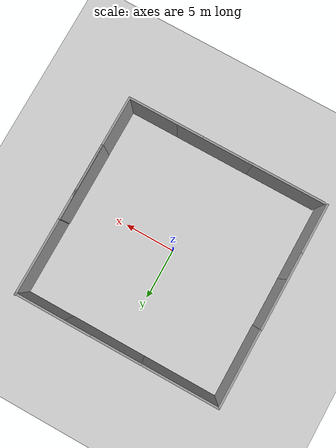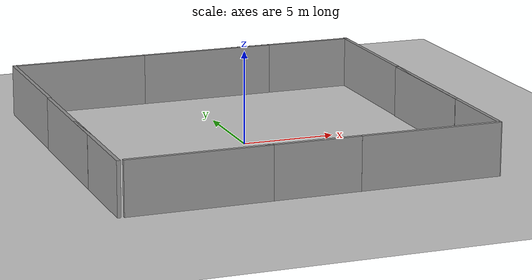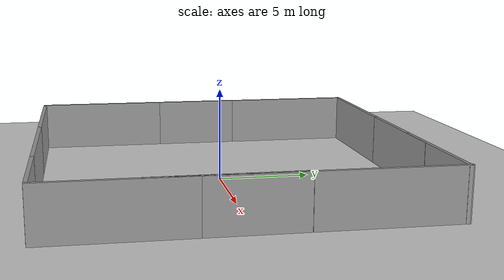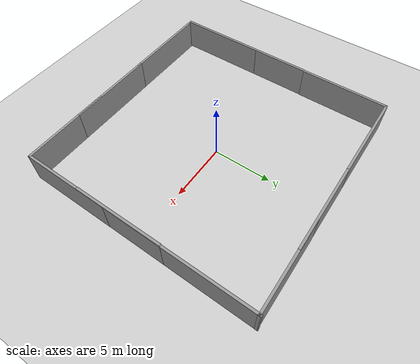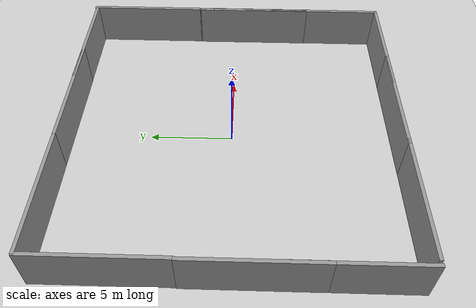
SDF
<sdf version="1.7">
 <world name="default">
  <light name="sun" type="directional">
   <pose>0 0 10 0 -0 0</pose>
   <diffuse>0.8 0.8 0.8 1</diffuse>
   <specular>0.2 0.2 0.2 1</specular>
   <attenuation>
    <range>1000</range>
    <constant>0.9</constant>
    <linear>0.01</linear>
    <quadratic>0.001</quadratic>
   </attenuation>
   <direction>-0.5 0.1 -0.9</direction>
   <spot><inner_angle>0</inner_angle><outer_angle>0</outer_angle><falloff>0</falloff></spot>
  </light>
  <model name="ground_plane">
   <static>1</static>
   <link name="link">
    <collision name="collision">
     <geometry><plane><normal>0 0 1</normal><size>100 100</size></plane></geometry>
     <surface>
      <contact><collide_bitmask>65535</collide_bitmask></contact>
      <friction><ode><mu>100</mu><mu2>50</mu2></ode></friction>
     </surface>
    </collision>
    <visual name="visual">
     <cast_shadows>0</cast_shadows>
     <geometry><plane><normal>0 0 1</normal><size>100 100</size></plane></geometry>
     <material>
      <script><uri>file://media/materials/scripts/gazebo.material</uri><name>Gazebo/Grey</name></script>
     </material>
    </visual>
   </link>
  </model>
  <gravity>0 0 -9.8</gravity>
  <magnetic_field>6e-06 2.3e-05 -4.2e-05</magnetic_field>
  <atmosphere type="adiabatic"/>
  <physics name="default_physics" default="0" type="ode">
   <max_step_size>0.001</max_step_size>
   <real_time_factor>1</real_time_factor>
   <real_time_update_rate>1000</real_time_update_rate>
  </physics>
  <model name="grey_wall">
   <static>1</static>
   <link name="link">
    <pose>0 0 1.4 0 -0 0</pose>
    <collision name="collision"><geometry><box><size>7.5 0.2 2.8</size></box></geometry></collision>
    <visual name="visual">
     <cast_shadows>0</cast_shadows>
     <geometry><box><size>7.5 0.2 2.8</size></box></geometry>
     <material>
      <script>
       <uri>model://grey_wall/materials/scripts</uri>
       <uri>model://grey_wall/materials/textures</uri>
       <name>vrc/grey_wall</name>
      </script>
     </material>
    </visual>
   </link>
   <pose>-9.85812 6.19113 0 0 0 -1.57</pose>
  </model>
  <model name="grey_wall2">
   <static>1</static>
   <link name="link">
    <pose>0 0 1.4 0 -0 0</pose>
    <collision name="collision"><geometry><box><size>7.5 0.2 2.8</size></box></geometry></collision>
    <visual name="visual">
     <cast_shadows>0</cast_shadows>
     <geometry><box><size>7.5 0.2 2.8</size></box></geometry>
     <material>
      <script>
       <uri>model://grey_wall/materials/scripts</uri>
       <uri>model://grey_wall/materials/textures</uri>
       <name>vrc/grey_wall</name>
      </script>
     </material>
    </visual>
   </link>
   <pose>-6.13866 9.86911 0 0 -0 0</pose>
  </model>
  <gravity>0 0 -9.8</gravity>
  <magnetic_field>6e-06 2.3e-05 -4.2e-05</magnetic_field>
  <atmosphere type="adiabatic"/>
  <scene><ambient>0.4 0.4 0.4 1</ambient><background>0.7 0.7 0.7 1</background><shadows>1</shadows></scene>
  <spherical_coordinates>
   <surface_model>EARTH_WGS84</surface_model>
   <latitude_deg>0</latitude_deg>
   <longitude_deg>0</longitude_deg>
   <elevation>0</elevation>
   <heading_deg>0</heading_deg>
  </spherical_coordinates>
  <model name="grey_wall2_clone">
   <static>1</static>
   <link name="link">
    <pose>0 0 1.4 0 -0 0</pose>
    <collision name="collision"><geometry><box><size>7.5 0.2 2.8</size></box></geometry></collision>
    <visual name="visual">
     <cast_shadows>0</cast_shadows>
     <geometry><box><size>7.5 0.2 2.8</size></box></geometry>
     <material>
      <script>
       <uri>model://grey_wall/materials/scripts</uri>
       <uri>model://grey_wall/materials/textures</uri>
       <name>vrc/grey_wall</name>
      </script>
     </material>
    </visual>
   </link>
   <pose>1.35256 9.87457 0 0 -0 0</pose>
  </model>
  <model name="grey_wall2_clone_0_clone">
   <static>1</static>
   <link name="link">
    <pose>0 0 1.4 0 -0 0</pose>
    <collision name="collision"><geometry><box><size>7.5 0.2 2.8</size></box></geometry></collision>
    <visual name="visual">
     <cast_shadows>0</cast_shadows>
     <geometry><box><size>7.5 0.2 2.8</size></box></geometry>
     <material>
      <script>
       <uri>model://grey_wall/materials/scripts</uri>
       <uri>model://grey_wall/materials/textures</uri>
       <name>vrc/grey_wall</name>
      </script>
     </material>
    </visual>
   </link>
   <pose>9.88881 -1.20445 0 0 0 -1.57254</pose>
  </model>
  <model name="grey_wall2_clone_0_clone_clone">
   <static>1</static>
   <link name="link">
    <pose>0 0 1.4 0 -0 0</pose>
    <collision name="collision"><geometry><box><size>7.5 0.2 2.8</size></box></geometry></collision>
    <visual name="visual">
     <cast_shadows>0</cast_shadows>
     <geometry><box><size>7.5 0.2 2.8</size></box></geometry>
     <material>
      <script>
       <uri>model://grey_wall/materials/scripts</uri>
       <uri>model://grey_wall/materials/textures</uri>
       <name>vrc/grey_wall</name>
      </script>
     </material>
    </visual>
   </link>
   <pose>9.86729 -1.26405 0 0 -0 1.57153</pose>
  </model>
  <model name="grey_wall_clone">
   <static>1</static>
   <link name="link">
    <pose>0 0 1.4 0 -0 0</pose>
    <collision name="collision"><geometry><box><size>7.5 0.2 2.8</size></box></geometry></collision>
    <visual name="visual">
     <cast_shadows>0</cast_shadows>
     <geometry><box><size>7.5 0.2 2.8</size></box></geometry>
     <material>
      <script>
       <uri>model://grey_wall/materials/scripts</uri>
       <uri>model://grey_wall/materials/textures</uri>
       <name>vrc/grey_wall</name>
      </script>
     </material>
    </visual>
   </link>
   <pose>-9.88553 -1.29417 0 0 0 -1.57</pose>
  </model>
  <model name="grey_wall_clone_clone">
   <static>1</static>
   <link name="link">
    <pose>0 0 1.4 0 -0 0</pose>
    <collision name="collision"><geometry><box><size>7.5 0.2 2.8</size></box></geometry></collision>
    <visual name="visual">
     <cast_shadows>0</cast_shadows>
     <geometry><box><size>7.5 0.2 2.8</size></box></geometry>
     <material>
      <script>
       <uri>model://grey_wall/materials/scripts</uri>
       <uri>model://grey_wall/materials/textures</uri>
       <name>vrc/grey_wall</name>
      </script>
     </material>
    </visual>
   </link>
   <pose>-9.87747 -6.18613 0 0 0 -1.57</pose>
  </model>
  <model name="grey_wall2_clone_0_clone_0">
   <static>1</static>
   <link name="link">
    <pose>0 0 1.4 0 -0 0</pose>
    <collision name="collision"><geometry><box><size>7.5 0.2 2.8</size></box></geometry></collision>
    <visual name="visual">
     <cast_shadows>0</cast_shadows>
     <geometry><box><size>7.5 0.2 2.8</size></box></geometry>
     <material>
      <script>
       <uri>model://grey_wall/materials/scripts</uri>
       <uri>model://grey_wall/materials/textures</uri>
       <name>vrc/grey_wall</name>
      </script>
     </material>
    </visual>
   </link>
   <pose>1.23052 -9.85199 0 0 -0 0</pose>
  </model>
  <model name="grey_wall2_clone_0_clone_1">
   <static>1</static>
   <link name="link">
    <pose>0 0 1.4 0 -0 0</pose>
    <collision name="collision"><geometry><box><size>7.5 0.2 2.8</size></box></geometry></collision>
    <visual name="visual">
     <cast_shadows>0</cast_shadows>
     <geometry><box><size>7.5 0.2 2.8</size></box></geometry>
     <material>
      <script>
       <uri>model://grey_wall/materials/scripts</uri>
       <uri>model://grey_wall/materials/textures</uri>
       <name>vrc/grey_wall</name>
      </script>
     </material>
    </visual>
   </link>
   <pose>6.1863 -9.85422 0 0 -0 0</pose>
  </model>
  <model name="grey_wall2_clone_0_clone_0_clone">
   <static>1</static>
   <link name="link">
    <pose>0 0 1.4 0 -0 0</pose>
    <collision name="collision"><geometry><box><size>7.5 0.2 2.8</size></box></geometry></collision>
    <visual name="visual">
     <cast_shadows>0</cast_shadows>
     <geometry><box><size>7.5 0.2 2.8</size></box></geometry>
     <material>
      <script>
       <uri>model://grey_wall/materials/scripts</uri>
       <uri>model://grey_wall/materials/textures</uri>
       <name>vrc/grey_wall</name>
      </script>
     </material>
    </visual>
   </link>
   <pose>-5.88058 -9.85851 0 0 -0 0</pose>
  </model>
  <model name="grey_wall2_clone_0_clone_clone_0">
   <static>1</static>
   <link name="link">
    <pose>0 0 1.4 0 -0 0</pose>
    <collision name="collision"><geometry><box><size>7.5 0.2 2.8</size></box></geometry></collision>
    <visual name="visual">
     <cast_shadows>0</cast_shadows>
     <geometry><box><size>7.5 0.2 2.8</size></box></geometry>
     <material>
      <script>
       <uri>model://grey_wall/materials/scripts</uri>
       <uri>model://grey_wall/materials/textures</uri>
       <name>vrc/grey_wall</name>
      </script>
     </material>
    </visual>
   </link>
   <pose>9.90371 6.3031 0 0 0 -1.57254</pose>
  </model>
  <model name="grey_wall2_clone_0_clone_clone_1">
   <static>1</static>
   <link name="link">
    <pose>0 0 1.4 0 -0 0</pose>
    <collision name="collision"><geometry><box><size>7.5 0.2 2.8</size></box></geometry></collision>
    <visual name="visual">
     <cast_shadows>0</cast_shadows>
     <geometry><box><size>7.5 0.2 2.8</size></box></geometry>
     <material>
      <script>
       <uri>model://grey_wall/materials/scripts</uri>
       <uri>model://grey_wall/materials/textures</uri>
       <name>vrc/grey_wall</name>
      </script>
     </material>
    </visual>
   </link>
   <pose>9.88522 -6.19704 0 0 0 -1.57254</pose>
  </model>
  <model name="grey_wall2_clone_clone">
   <static>1</static>
   <link name="link">
    <pose>0 0 1.4 0 -0 0</pose>
    <collision name="collision"><geometry><box><size>7.5 0.2 2.8</size></box></geometry></collision>
    <visual name="visual">
     <cast_shadows>0</cast_shadows>
     <geometry><box><size>7.5 0.2 2.8</size></box></geometry>
     <material>
      <script>
       <uri>model://grey_wall/materials/scripts</uri>
       <uri>model://grey_wall/materials/textures</uri>
       <name>vrc/grey_wall</name>
      </script>
     </material>
    </visual>
   </link>
   <pose>6.27153 9.89155 0 0 -0 0</pose>
  </model>
 </world>
</sdf>
